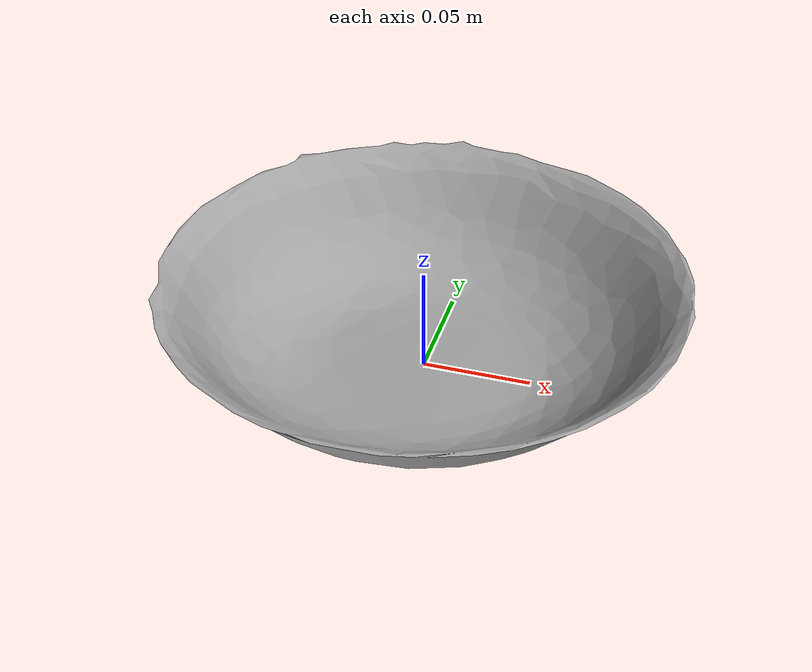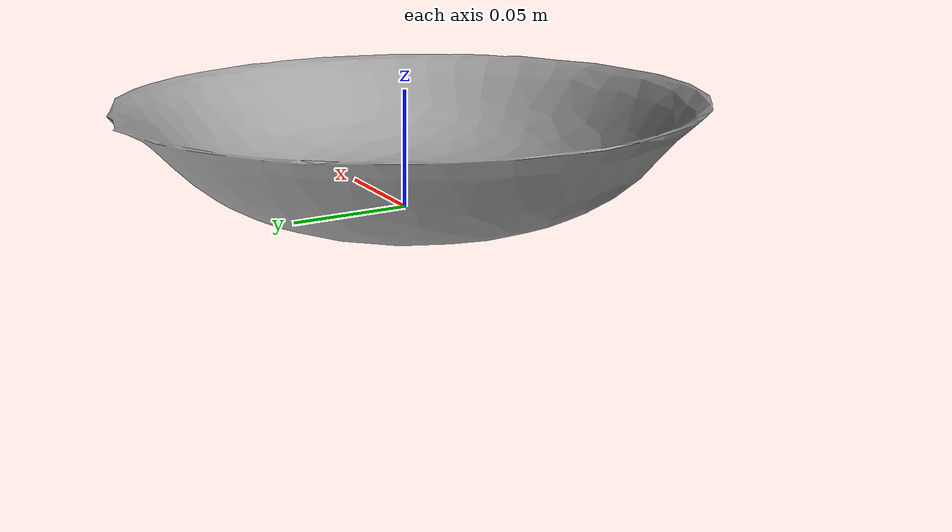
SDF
<?xml version="1.0" ?>
<sdf version="1.5">
  <model name="deep_plate">
    <link name="deep_plate">
      <inertial>
        <mass>0.390</mass>
        <inertia>
          <ixx>0.00058</ixx>
          <ixy>0</ixy>
          <ixz>0</ixz>
          <iyy>0.00058</iyy>
          <iyz>0</iyz>
          <izz>0.00019</izz>
        </inertia>
      </inertial>
      <collision name="deep_plate_collision">
        <geometry>
          <mesh>
            <uri>model://deep_plate/meshes/deep_plate.dae</uri>
          </mesh>
        </geometry>
        <surface>
          <friction>
            <ode>
              <mu>1.0</mu>
              <mu2>1.0</mu2>
            </ode>
          </friction>
          <contact>
            <ode>
              <kp>10000000.0</kp>
              <kd>1.0</kd>
              <min_depth>0.001</min_depth>
              <max_vel>0.1</max_vel>
            </ode>
          </contact>
        </surface>
      </collision>
      <visual name="small_bowl_visual">
        <geometry>
          <mesh>
            <uri>model://deep_plate/meshes/deep_plate.dae</uri>
          </mesh>
        </geometry>
      </visual>
    </link>
  </model>
</sdf>
